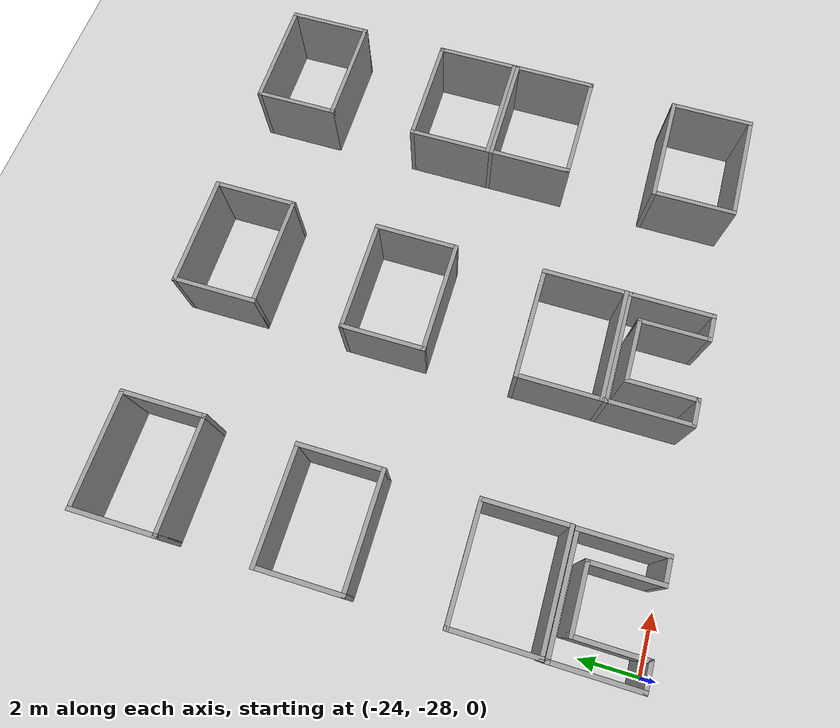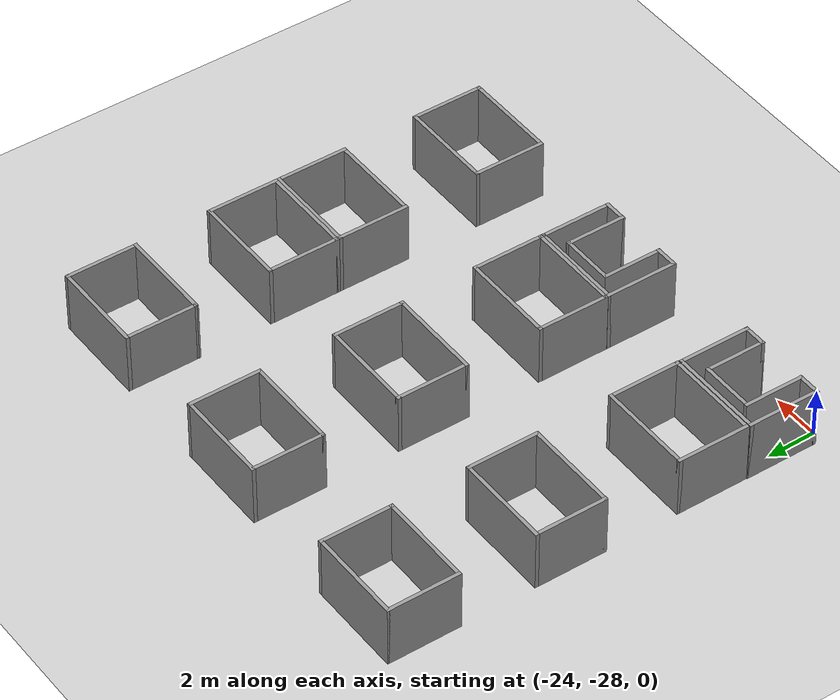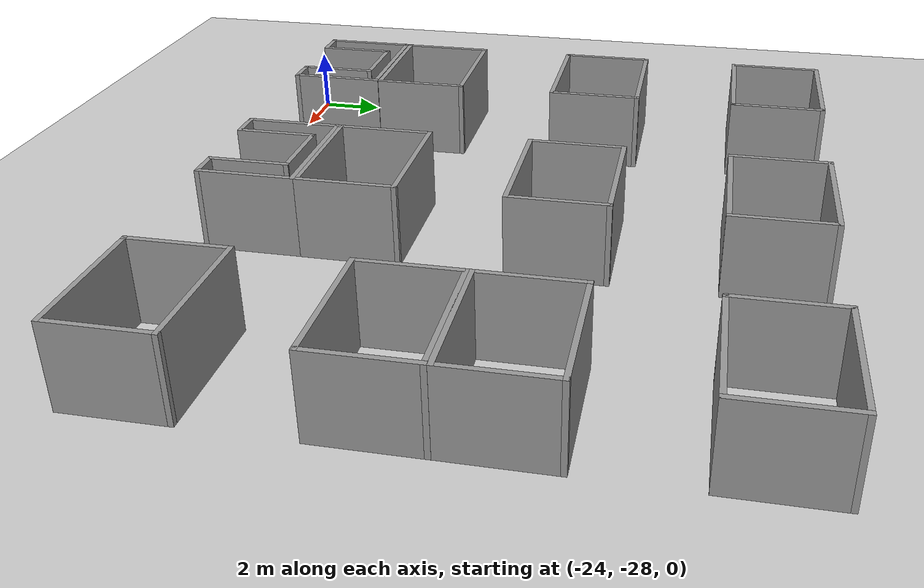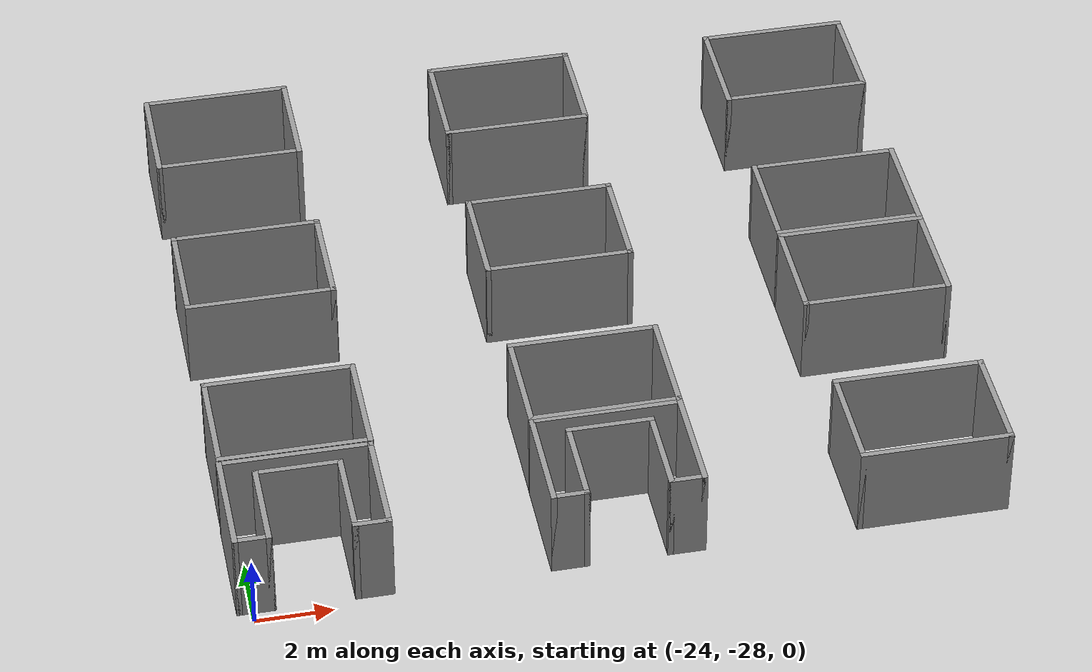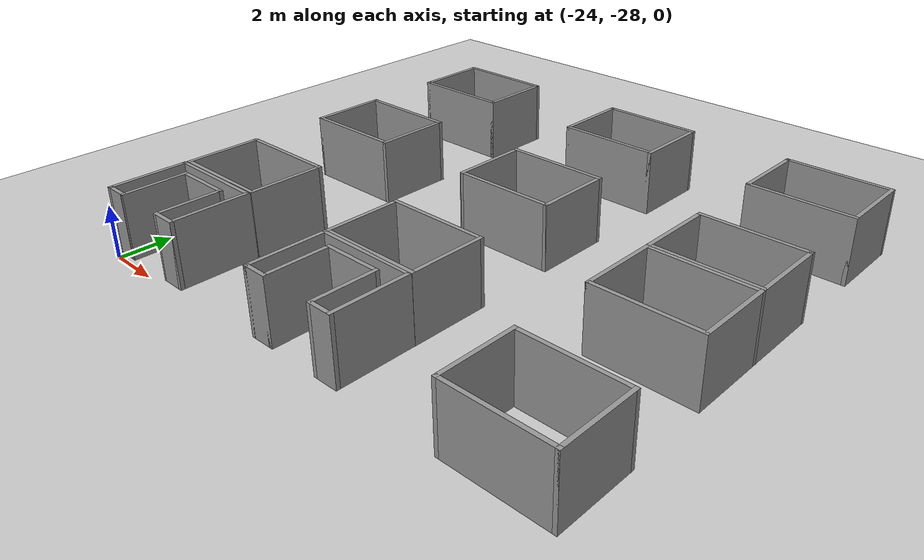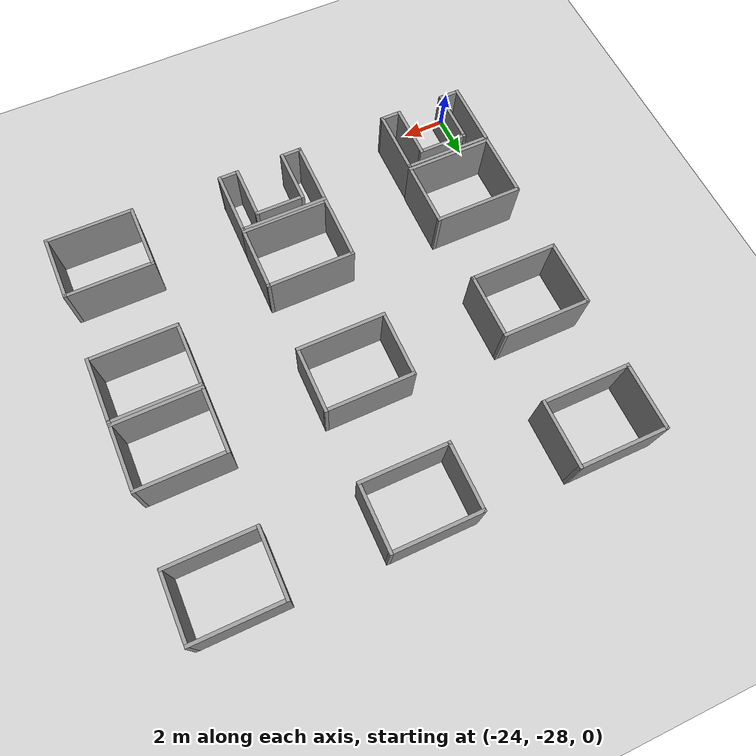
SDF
<sdf version="1.6">
 <world name="default">
  <model name="ground_plane">
   <static>1</static>
   <link name="link">
    <collision name="collision">
     <geometry><plane><normal>0 0 1</normal><size>105 105</size></plane></geometry>
     <surface>
      <contact><collide_bitmask>65535</collide_bitmask></contact>
      <friction><ode><mu>100</mu><mu2>50</mu2></ode></friction>
     </surface>
    </collision>
    <visual name="visual">
     <cast_shadows>0</cast_shadows>
     <geometry><plane><normal>0 0 1</normal><size>105 105</size></plane></geometry>
     <material>
      <script><uri>file://media/materials/scripts/gazebo.material</uri><name>Gazebo/Grey</name></script>
     </material>
    </visual>
   </link>
  </model>
  <model name="base3x4_53">
   <pose>-22.3998 -23.2187 0 0 -0 0</pose>
   <link name="Wall_18">
    <collision name="Wall_18_Collision">
     <geometry><box><size>3 0.15 2.5</size></box></geometry>
     <pose>0 0 1.25 0 -0 0</pose>
    </collision>
    <visual name="Wall_18_Visual">
     <pose>0 0 1.25 0 -0 0</pose>
     <geometry><box><size>3 0.15 2.5</size></box></geometry>
     <material>
      <script><uri>file://media/materials/scripts/gazebo.material</uri><name>Gazebo/Grey</name></script>
      <ambient>1 1 1 1</ambient>
     </material>
     <meta><layer>0</layer></meta>
    </visual>
    <pose>-1.925 -0 0 0 -0 -1.5708</pose>
   </link>
   <link name="Wall_19">
    <collision name="Wall_19_Collision">
     <geometry><box><size>4 0.15 2.5</size></box></geometry>
     <pose>0 0 1.25 0 -0 0</pose>
    </collision>
    <visual name="Wall_19_Visual">
     <pose>0 0 1.25 0 -0 0</pose>
     <geometry><box><size>4 0.15 2.5</size></box></geometry>
     <material>
      <script><uri>file://media/materials/scripts/gazebo.material</uri><name>Gazebo/Grey</name></script>
      <ambient>1 1 1 1</ambient>
     </material>
     <meta><layer>0</layer></meta>
    </visual>
    <pose>-0 -1.425 0 0 -0 0</pose>
   </link>
   <link name="Wall_20">
    <collision name="Wall_20_Collision">
     <geometry><box><size>3 0.15 2.5</size></box></geometry>
     <pose>0 0 1.25 0 -0 0</pose>
    </collision>
    <visual name="Wall_20_Visual">
     <pose>0 0 1.25 0 -0 0</pose>
     <geometry><box><size>3 0.15 2.5</size></box></geometry>
     <material>
      <script><uri>file://media/materials/scripts/gazebo.material</uri><name>Gazebo/Grey</name></script>
      <ambient>1 1 1 1</ambient>
     </material>
     <meta><layer>0</layer></meta>
    </visual>
    <pose>1.925 -0 0 0 -0 1.5708</pose>
   </link>
   <link name="Wall_21">
    <collision name="Wall_21_Collision">
     <geometry><box><size>4 0.15 2.5</size></box></geometry>
     <pose>0 0 1.25 0 -0 0</pose>
    </collision>
    <visual name="Wall_21_Visual">
     <pose>0 0 1.25 0 -0 0</pose>
     <geometry><box><size>4 0.15 2.5</size></box></geometry>
     <material>
      <script><uri>file://media/materials/scripts/gazebo.material</uri><name>Gazebo/Grey</name></script>
      <ambient>1 1 1 1</ambient>
     </material>
     <meta><layer>0</layer></meta>
    </visual>
    <pose>-0 1.425 0 0 -0 3.14159</pose>
   </link>
   <static>1</static>
  </model>
  <model name="base3x4_61">
   <pose>-22.4078 -17.2215 0 0 -0 0</pose>
   <link name="Wall_18">
    <collision name="Wall_18_Collision">
     <geometry><box><size>3 0.15 2.5</size></box></geometry>
     <pose>0 0 1.25 0 -0 0</pose>
    </collision>
    <visual name="Wall_18_Visual">
     <pose>0 0 1.25 0 -0 0</pose>
     <geometry><box><size>3 0.15 2.5</size></box></geometry>
     <material>
      <script><uri>file://media/materials/scripts/gazebo.material</uri><name>Gazebo/Grey</name></script>
      <ambient>1 1 1 1</ambient>
     </material>
     <meta><layer>0</layer></meta>
    </visual>
    <pose>-1.925 -0 0 0 -0 -1.5708</pose>
   </link>
   <link name="Wall_19">
    <collision name="Wall_19_Collision">
     <geometry><box><size>4 0.15 2.5</size></box></geometry>
     <pose>0 0 1.25 0 -0 0</pose>
    </collision>
    <visual name="Wall_19_Visual">
     <pose>0 0 1.25 0 -0 0</pose>
     <geometry><box><size>4 0.15 2.5</size></box></geometry>
     <material>
      <script><uri>file://media/materials/scripts/gazebo.material</uri><name>Gazebo/Grey</name></script>
      <ambient>1 1 1 1</ambient>
     </material>
     <meta><layer>0</layer></meta>
    </visual>
    <pose>-0 -1.425 0 0 -0 0</pose>
   </link>
   <link name="Wall_20">
    <collision name="Wall_20_Collision">
     <geometry><box><size>3 0.15 2.5</size></box></geometry>
     <pose>0 0 1.25 0 -0 0</pose>
    </collision>
    <visual name="Wall_20_Visual">
     <pose>0 0 1.25 0 -0 0</pose>
     <geometry><box><size>3 0.15 2.5</size></box></geometry>
     <material>
      <script><uri>file://media/materials/scripts/gazebo.material</uri><name>Gazebo/Grey</name></script>
      <ambient>1 1 1 1</ambient>
     </material>
     <meta><layer>0</layer></meta>
    </visual>
    <pose>1.925 -0 0 0 -0 1.5708</pose>
   </link>
   <link name="Wall_21">
    <collision name="Wall_21_Collision">
     <geometry><box><size>4 0.15 2.5</size></box></geometry>
     <pose>0 0 1.25 0 -0 0</pose>
    </collision>
    <visual name="Wall_21_Visual">
     <pose>0 0 1.25 0 -0 0</pose>
     <geometry><box><size>4 0.15 2.5</size></box></geometry>
     <material>
      <script><uri>file://media/materials/scripts/gazebo.material</uri><name>Gazebo/Grey</name></script>
      <ambient>1 1 1 1</ambient>
     </material>
     <meta><layer>0</layer></meta>
    </visual>
    <pose>-0 1.425 0 0 -0 3.14159</pose>
   </link>
   <static>1</static>
  </model>
  <model name="base3x4_67">
   <pose>-22.4088 -11.219 0 0 -0 0</pose>
   <link name="Wall_18">
    <collision name="Wall_18_Collision">
     <geometry><box><size>3 0.15 2.5</size></box></geometry>
     <pose>0 0 1.25 0 -0 0</pose>
    </collision>
    <visual name="Wall_18_Visual">
     <pose>0 0 1.25 0 -0 0</pose>
     <geometry><box><size>3 0.15 2.5</size></box></geometry>
     <material>
      <script><uri>file://media/materials/scripts/gazebo.material</uri><name>Gazebo/Grey</name></script>
      <ambient>1 1 1 1</ambient>
     </material>
     <meta><layer>0</layer></meta>
    </visual>
    <pose>-1.925 -0 0 0 -0 -1.5708</pose>
   </link>
   <link name="Wall_19">
    <collision name="Wall_19_Collision">
     <geometry><box><size>4 0.15 2.5</size></box></geometry>
     <pose>0 0 1.25 0 -0 0</pose>
    </collision>
    <visual name="Wall_19_Visual">
     <pose>0 0 1.25 0 -0 0</pose>
     <geometry><box><size>4 0.15 2.5</size></box></geometry>
     <material>
      <script><uri>file://media/materials/scripts/gazebo.material</uri><name>Gazebo/Grey</name></script>
      <ambient>1 1 1 1</ambient>
     </material>
     <meta><layer>0</layer></meta>
    </visual>
    <pose>-0 -1.425 0 0 -0 0</pose>
   </link>
   <link name="Wall_20">
    <collision name="Wall_20_Collision">
     <geometry><box><size>3 0.15 2.5</size></box></geometry>
     <pose>0 0 1.25 0 -0 0</pose>
    </collision>
    <visual name="Wall_20_Visual">
     <pose>0 0 1.25 0 -0 0</pose>
     <geometry><box><size>3 0.15 2.5</size></box></geometry>
     <material>
      <script><uri>file://media/materials/scripts/gazebo.material</uri><name>Gazebo/Grey</name></script>
      <ambient>1 1 1 1</ambient>
     </material>
     <meta><layer>0</layer></meta>
    </visual>
    <pose>1.925 -0 0 0 -0 1.5708</pose>
   </link>
   <link name="Wall_21">
    <collision name="Wall_21_Collision">
     <geometry><box><size>4 0.15 2.5</size></box></geometry>
     <pose>0 0 1.25 0 -0 0</pose>
    </collision>
    <visual name="Wall_21_Visual">
     <pose>0 0 1.25 0 -0 0</pose>
     <geometry><box><size>4 0.15 2.5</size></box></geometry>
     <material>
      <script><uri>file://media/materials/scripts/gazebo.material</uri><name>Gazebo/Grey</name></script>
      <ambient>1 1 1 1</ambient>
     </material>
     <meta><layer>0</layer></meta>
    </visual>
    <pose>-0 1.425 0 0 -0 3.14159</pose>
   </link>
   <static>1</static>
  </model>
  <model name="base3x4_64">
   <pose>-14.4197 -23.2316 0 0 -0 0</pose>
   <link name="Wall_18">
    <collision name="Wall_18_Collision">
     <geometry><box><size>3 0.15 2.5</size></box></geometry>
     <pose>0 0 1.25 0 -0 0</pose>
    </collision>
    <visual name="Wall_18_Visual">
     <pose>0 0 1.25 0 -0 0</pose>
     <geometry><box><size>3 0.15 2.5</size></box></geometry>
     <material>
      <script><uri>file://media/materials/scripts/gazebo.material</uri><name>Gazebo/Grey</name></script>
      <ambient>1 1 1 1</ambient>
     </material>
     <meta><layer>0</layer></meta>
    </visual>
    <pose>-1.925 -0 0 0 -0 -1.5708</pose>
   </link>
   <link name="Wall_19">
    <collision name="Wall_19_Collision">
     <geometry><box><size>4 0.15 2.5</size></box></geometry>
     <pose>0 0 1.25 0 -0 0</pose>
    </collision>
    <visual name="Wall_19_Visual">
     <pose>0 0 1.25 0 -0 0</pose>
     <geometry><box><size>4 0.15 2.5</size></box></geometry>
     <material>
      <script><uri>file://media/materials/scripts/gazebo.material</uri><name>Gazebo/Grey</name></script>
      <ambient>1 1 1 1</ambient>
     </material>
     <meta><layer>0</layer></meta>
    </visual>
    <pose>-0 -1.425 0 0 -0 0</pose>
   </link>
   <link name="Wall_20">
    <collision name="Wall_20_Collision">
     <geometry><box><size>3 0.15 2.5</size></box></geometry>
     <pose>0 0 1.25 0 -0 0</pose>
    </collision>
    <visual name="Wall_20_Visual">
     <pose>0 0 1.25 0 -0 0</pose>
     <geometry><box><size>3 0.15 2.5</size></box></geometry>
     <material>
      <script><uri>file://media/materials/scripts/gazebo.material</uri><name>Gazebo/Grey</name></script>
      <ambient>1 1 1 1</ambient>
     </material>
     <meta><layer>0</layer></meta>
    </visual>
    <pose>1.925 -0 0 0 -0 1.5708</pose>
   </link>
   <link name="Wall_21">
    <collision name="Wall_21_Collision">
     <geometry><box><size>4 0.15 2.5</size></box></geometry>
     <pose>0 0 1.25 0 -0 0</pose>
    </collision>
    <visual name="Wall_21_Visual">
     <pose>0 0 1.25 0 -0 0</pose>
     <geometry><box><size>4 0.15 2.5</size></box></geometry>
     <material>
      <script><uri>file://media/materials/scripts/gazebo.material</uri><name>Gazebo/Grey</name></script>
      <ambient>1 1 1 1</ambient>
     </material>
     <meta><layer>0</layer></meta>
    </visual>
    <pose>-0 1.425 0 0 -0 3.14159</pose>
   </link>
   <static>1</static>
  </model>
  <model name="base3x4_72">
   <pose>-14.4176 -17.2389 0 0 -0 0</pose>
   <link name="Wall_18">
    <collision name="Wall_18_Collision">
     <geometry><box><size>3 0.15 2.5</size></box></geometry>
     <pose>0 0 1.25 0 -0 0</pose>
    </collision>
    <visual name="Wall_18_Visual">
     <pose>0 0 1.25 0 -0 0</pose>
     <geometry><box><size>3 0.15 2.5</size></box></geometry>
     <material>
      <script><uri>file://media/materials/scripts/gazebo.material</uri><name>Gazebo/Grey</name></script>
      <ambient>1 1 1 1</ambient>
     </material>
     <meta><layer>0</layer></meta>
    </visual>
    <pose>-1.925 -0 0 0 -0 -1.5708</pose>
   </link>
   <link name="Wall_19">
    <collision name="Wall_19_Collision">
     <geometry><box><size>4 0.15 2.5</size></box></geometry>
     <pose>0 0 1.25 0 -0 0</pose>
    </collision>
    <visual name="Wall_19_Visual">
     <pose>0 0 1.25 0 -0 0</pose>
     <geometry><box><size>4 0.15 2.5</size></box></geometry>
     <material>
      <script><uri>file://media/materials/scripts/gazebo.material</uri><name>Gazebo/Grey</name></script>
      <ambient>1 1 1 1</ambient>
     </material>
     <meta><layer>0</layer></meta>
    </visual>
    <pose>-0 -1.425 0 0 -0 0</pose>
   </link>
   <link name="Wall_20">
    <collision name="Wall_20_Collision">
     <geometry><box><size>3 0.15 2.5</size></box></geometry>
     <pose>0 0 1.25 0 -0 0</pose>
    </collision>
    <visual name="Wall_20_Visual">
     <pose>0 0 1.25 0 -0 0</pose>
     <geometry><box><size>3 0.15 2.5</size></box></geometry>
     <material>
      <script><uri>file://media/materials/scripts/gazebo.material</uri><name>Gazebo/Grey</name></script>
      <ambient>1 1 1 1</ambient>
     </material>
     <meta><layer>0</layer></meta>
    </visual>
    <pose>1.925 -0 0 0 -0 1.5708</pose>
   </link>
   <link name="Wall_21">
    <collision name="Wall_21_Collision">
     <geometry><box><size>4 0.15 2.5</size></box></geometry>
     <pose>0 0 1.25 0 -0 0</pose>
    </collision>
    <visual name="Wall_21_Visual">
     <pose>0 0 1.25 0 -0 0</pose>
     <geometry><box><size>4 0.15 2.5</size></box></geometry>
     <material>
      <script><uri>file://media/materials/scripts/gazebo.material</uri><name>Gazebo/Grey</name></script>
      <ambient>1 1 1 1</ambient>
     </material>
     <meta><layer>0</layer></meta>
    </visual>
    <pose>-0 1.425 0 0 -0 3.14159</pose>
   </link>
   <static>1</static>
  </model>
  <model name="base3x4_75">
   <pose>-14.4135 -11.2542 0 0 -0 0</pose>
   <link name="Wall_18">
    <collision name="Wall_18_Collision">
     <geometry><box><size>3 0.15 2.5</size></box></geometry>
     <pose>0 0 1.25 0 -0 0</pose>
    </collision>
    <visual name="Wall_18_Visual">
     <pose>0 0 1.25 0 -0 0</pose>
     <geometry><box><size>3 0.15 2.5</size></box></geometry>
     <material>
      <script><uri>file://media/materials/scripts/gazebo.material</uri><name>Gazebo/Grey</name></script>
      <ambient>1 1 1 1</ambient>
     </material>
     <meta><layer>0</layer></meta>
    </visual>
    <pose>-1.925 -0 0 0 -0 -1.5708</pose>
   </link>
   <link name="Wall_19">
    <collision name="Wall_19_Collision">
     <geometry><box><size>4 0.15 2.5</size></box></geometry>
     <pose>0 0 1.25 0 -0 0</pose>
    </collision>
    <visual name="Wall_19_Visual">
     <pose>0 0 1.25 0 -0 0</pose>
     <geometry><box><size>4 0.15 2.5</size></box></geometry>
     <material>
      <script><uri>file://media/materials/scripts/gazebo.material</uri><name>Gazebo/Grey</name></script>
      <ambient>1 1 1 1</ambient>
     </material>
     <meta><layer>0</layer></meta>
    </visual>
    <pose>-0 -1.425 0 0 -0 0</pose>
   </link>
   <link name="Wall_20">
    <collision name="Wall_20_Collision">
     <geometry><box><size>3 0.15 2.5</size></box></geometry>
     <pose>0 0 1.25 0 -0 0</pose>
    </collision>
    <visual name="Wall_20_Visual">
     <pose>0 0 1.25 0 -0 0</pose>
     <geometry><box><size>3 0.15 2.5</size></box></geometry>
     <material>
      <script><uri>file://media/materials/scripts/gazebo.material</uri><name>Gazebo/Grey</name></script>
      <ambient>1 1 1 1</ambient>
     </material>
     <meta><layer>0</layer></meta>
    </visual>
    <pose>1.925 -0 0 0 -0 1.5708</pose>
   </link>
   <link name="Wall_21">
    <collision name="Wall_21_Collision">
     <geometry><box><size>4 0.15 2.5</size></box></geometry>
     <pose>0 0 1.25 0 -0 0</pose>
    </collision>
    <visual name="Wall_21_Visual">
     <pose>0 0 1.25 0 -0 0</pose>
     <geometry><box><size>4 0.15 2.5</size></box></geometry>
     <material>
      <script><uri>file://media/materials/scripts/gazebo.material</uri><name>Gazebo/Grey</name></script>
      <ambient>1 1 1 1</ambient>
     </material>
     <meta><layer>0</layer></meta>
    </visual>
    <pose>-0 1.425 0 0 -0 3.14159</pose>
   </link>
   <static>1</static>
  </model>
  <model name="base3x4_47">
   <pose>-6.49308 -20.2372 0 0 -0 0</pose>
   <link name="Wall_18">
    <collision name="Wall_18_Collision">
     <geometry><box><size>3 0.15 2.5</size></box></geometry>
     <pose>0 0 1.25 0 -0 0</pose>
    </collision>
    <visual name="Wall_18_Visual">
     <pose>0 0 1.25 0 -0 0</pose>
     <geometry><box><size>3 0.15 2.5</size></box></geometry>
     <material>
      <script><uri>file://media/materials/scripts/gazebo.material</uri><name>Gazebo/Grey</name></script>
      <ambient>1 1 1 1</ambient>
     </material>
     <meta><layer>0</layer></meta>
    </visual>
    <pose>-1.925 -0 0 0 -0 -1.5708</pose>
   </link>
   <link name="Wall_19">
    <collision name="Wall_19_Collision">
     <geometry><box><size>4 0.15 2.5</size></box></geometry>
     <pose>0 0 1.25 0 -0 0</pose>
    </collision>
    <visual name="Wall_19_Visual">
     <pose>0 0 1.25 0 -0 0</pose>
     <geometry><box><size>4 0.15 2.5</size></box></geometry>
     <material>
      <script><uri>file://media/materials/scripts/gazebo.material</uri><name>Gazebo/Grey</name></script>
      <ambient>1 1 1 1</ambient>
     </material>
     <meta><layer>0</layer></meta>
    </visual>
    <pose>-0 -1.425 0 0 -0 0</pose>
   </link>
   <link name="Wall_20">
    <collision name="Wall_20_Collision">
     <geometry><box><size>3 0.15 2.5</size></box></geometry>
     <pose>0 0 1.25 0 -0 0</pose>
    </collision>
    <visual name="Wall_20_Visual">
     <pose>0 0 1.25 0 -0 0</pose>
     <geometry><box><size>3 0.15 2.5</size></box></geometry>
     <material>
      <script><uri>file://media/materials/scripts/gazebo.material</uri><name>Gazebo/Grey</name></script>
      <ambient>1 1 1 1</ambient>
     </material>
     <meta><layer>0</layer></meta>
    </visual>
    <pose>1.925 -0 0 0 -0 1.5708</pose>
   </link>
   <link name="Wall_21">
    <collision name="Wall_21_Collision">
     <geometry><box><size>4 0.15 2.5</size></box></geometry>
     <pose>0 0 1.25 0 -0 0</pose>
    </collision>
    <visual name="Wall_21_Visual">
     <pose>0 0 1.25 0 -0 0</pose>
     <geometry><box><size>4 0.15 2.5</size></box></geometry>
     <material>
      <script><uri>file://media/materials/scripts/gazebo.material</uri><name>Gazebo/Grey</name></script>
      <ambient>1 1 1 1</ambient>
     </material>
     <meta><layer>0</layer></meta>
    </visual>
    <pose>-0 1.425 0 0 -0 3.14159</pose>
   </link>
   <static>1</static>
  </model>
  <model name="base3x4_52">
   <pose>-6.49511 -17.2522 0 0 -0 0</pose>
   <link name="Wall_18">
    <collision name="Wall_18_Collision">
     <geometry><box><size>3 0.15 2.5</size></box></geometry>
     <pose>0 0 1.25 0 -0 0</pose>
    </collision>
    <visual name="Wall_18_Visual">
     <pose>0 0 1.25 0 -0 0</pose>
     <geometry><box><size>3 0.15 2.5</size></box></geometry>
     <material>
      <script><uri>file://media/materials/scripts/gazebo.material</uri><name>Gazebo/Grey</name></script>
      <ambient>1 1 1 1</ambient>
     </material>
     <meta><layer>0</layer></meta>
    </visual>
    <pose>-1.925 -0 0 0 -0 -1.5708</pose>
   </link>
   <link name="Wall_19">
    <collision name="Wall_19_Collision">
     <geometry><box><size>4 0.15 2.5</size></box></geometry>
     <pose>0 0 1.25 0 -0 0</pose>
    </collision>
    <visual name="Wall_19_Visual">
     <pose>0 0 1.25 0 -0 0</pose>
     <geometry><box><size>4 0.15 2.5</size></box></geometry>
     <material>
      <script><uri>file://media/materials/scripts/gazebo.material</uri><name>Gazebo/Grey</name></script>
      <ambient>1 1 1 1</ambient>
     </material>
     <meta><layer>0</layer></meta>
    </visual>
    <pose>-0 -1.425 0 0 -0 0</pose>
   </link>
   <link name="Wall_20">
    <collision name="Wall_20_Collision">
     <geometry><box><size>3 0.15 2.5</size></box></geometry>
     <pose>0 0 1.25 0 -0 0</pose>
    </collision>
    <visual name="Wall_20_Visual">
     <pose>0 0 1.25 0 -0 0</pose>
     <geometry><box><size>3 0.15 2.5</size></box></geometry>
     <material>
      <script><uri>file://media/materials/scripts/gazebo.material</uri><name>Gazebo/Grey</name></script>
      <ambient>1 1 1 1</ambient>
     </material>
     <meta><layer>0</layer></meta>
    </visual>
    <pose>1.925 -0 0 0 -0 1.5708</pose>
   </link>
   <link name="Wall_21">
    <collision name="Wall_21_Collision">
     <geometry><box><size>4 0.15 2.5</size></box></geometry>
     <pose>0 0 1.25 0 -0 0</pose>
    </collision>
    <visual name="Wall_21_Visual">
     <pose>0 0 1.25 0 -0 0</pose>
     <geometry><box><size>4 0.15 2.5</size></box></geometry>
     <material>
      <script><uri>file://media/materials/scripts/gazebo.material</uri><name>Gazebo/Grey</name></script>
      <ambient>1 1 1 1</ambient>
     </material>
     <meta><layer>0</layer></meta>
    </visual>
    <pose>-0 1.425 0 0 -0 3.14159</pose>
   </link>
   <static>1</static>
  </model>
  <model name="base3x4_83">
   <pose>-6.49855 -11.2829 0 0 -0 0</pose>
   <link name="Wall_18">
    <collision name="Wall_18_Collision">
     <geometry><box><size>3 0.15 2.5</size></box></geometry>
     <pose>0 0 1.25 0 -0 0</pose>
    </collision>
    <visual name="Wall_18_Visual">
     <pose>0 0 1.25 0 -0 0</pose>
     <geometry><box><size>3 0.15 2.5</size></box></geometry>
     <material>
      <script><uri>file://media/materials/scripts/gazebo.material</uri><name>Gazebo/Grey</name></script>
      <ambient>1 1 1 1</ambient>
     </material>
     <meta><layer>0</layer></meta>
    </visual>
    <pose>-1.925 -0 0 0 -0 -1.5708</pose>
   </link>
   <link name="Wall_19">
    <collision name="Wall_19_Collision">
     <geometry><box><size>4 0.15 2.5</size></box></geometry>
     <pose>0 0 1.25 0 -0 0</pose>
    </collision>
    <visual name="Wall_19_Visual">
     <pose>0 0 1.25 0 -0 0</pose>
     <geometry><box><size>4 0.15 2.5</size></box></geometry>
     <material>
      <script><uri>file://media/materials/scripts/gazebo.material</uri><name>Gazebo/Grey</name></script>
      <ambient>1 1 1 1</ambient>
     </material>
     <meta><layer>0</layer></meta>
    </visual>
    <pose>-0 -1.425 0 0 -0 0</pose>
   </link>
   <link name="Wall_20">
    <collision name="Wall_20_Collision">
     <geometry><box><size>3 0.15 2.5</size></box></geometry>
     <pose>0 0 1.25 0 -0 0</pose>
    </collision>
    <visual name="Wall_20_Visual">
     <pose>0 0 1.25 0 -0 0</pose>
     <geometry><box><size>3 0.15 2.5</size></box></geometry>
     <material>
      <script><uri>file://media/materials/scripts/gazebo.material</uri><name>Gazebo/Grey</name></script>
      <ambient>1 1 1 1</ambient>
     </material>
     <meta><layer>0</layer></meta>
    </visual>
    <pose>1.925 -0 0 0 -0 1.5708</pose>
   </link>
   <link name="Wall_21">
    <collision name="Wall_21_Collision">
     <geometry><box><size>4 0.15 2.5</size></box></geometry>
     <pose>0 0 1.25 0 -0 0</pose>
    </collision>
    <visual name="Wall_21_Visual">
     <pose>0 0 1.25 0 -0 0</pose>
     <geometry><box><size>4 0.15 2.5</size></box></geometry>
     <material>
      <script><uri>file://media/materials/scripts/gazebo.material</uri><name>Gazebo/Grey</name></script>
      <ambient>1 1 1 1</ambient>
     </material>
     <meta><layer>0</layer></meta>
    </visual>
    <pose>-0 1.425 0 0 -0 3.14159</pose>
   </link>
   <static>1</static>
  </model>
  <model name="base3x4_41">
   <pose>-6.49253 -26.2298 0 0 -0 0</pose>
   <link name="Wall_18">
    <collision name="Wall_18_Collision">
     <geometry><box><size>3 0.15 2.5</size></box></geometry>
     <pose>0 0 1.25 0 -0 0</pose>
    </collision>
    <visual name="Wall_18_Visual">
     <pose>0 0 1.25 0 -0 0</pose>
     <geometry><box><size>3 0.15 2.5</size></box></geometry>
     <material>
      <script><uri>file://media/materials/scripts/gazebo.material</uri><name>Gazebo/Grey</name></script>
      <ambient>1 1 1 1</ambient>
     </material>
     <meta><layer>0</layer></meta>
    </visual>
    <pose>-1.925 -0 0 0 -0 -1.5708</pose>
   </link>
   <link name="Wall_19">
    <collision name="Wall_19_Collision">
     <geometry><box><size>4 0.15 2.5</size></box></geometry>
     <pose>0 0 1.25 0 -0 0</pose>
    </collision>
    <visual name="Wall_19_Visual">
     <pose>0 0 1.25 0 -0 0</pose>
     <geometry><box><size>4 0.15 2.5</size></box></geometry>
     <material>
      <script><uri>file://media/materials/scripts/gazebo.material</uri><name>Gazebo/Grey</name></script>
      <ambient>1 1 1 1</ambient>
     </material>
     <meta><layer>0</layer></meta>
    </visual>
    <pose>-0 -1.425 0 0 -0 0</pose>
   </link>
   <link name="Wall_20">
    <collision name="Wall_20_Collision">
     <geometry><box><size>3 0.15 2.5</size></box></geometry>
     <pose>0 0 1.25 0 -0 0</pose>
    </collision>
    <visual name="Wall_20_Visual">
     <pose>0 0 1.25 0 -0 0</pose>
     <geometry><box><size>3 0.15 2.5</size></box></geometry>
     <material>
      <script><uri>file://media/materials/scripts/gazebo.material</uri><name>Gazebo/Grey</name></script>
      <ambient>1 1 1 1</ambient>
     </material>
     <meta><layer>0</layer></meta>
    </visual>
    <pose>1.925 -0 0 0 -0 1.5708</pose>
   </link>
   <link name="Wall_21">
    <collision name="Wall_21_Collision">
     <geometry><box><size>4 0.15 2.5</size></box></geometry>
     <pose>0 0 1.25 0 -0 0</pose>
    </collision>
    <visual name="Wall_21_Visual">
     <pose>0 0 1.25 0 -0 0</pose>
     <geometry><box><size>4 0.15 2.5</size></box></geometry>
     <material>
      <script><uri>file://media/materials/scripts/gazebo.material</uri><name>Gazebo/Grey</name></script>
      <ambient>1 1 1 1</ambient>
     </material>
     <meta><layer>0</layer></meta>
    </visual>
    <pose>-0 1.425 0 0 -0 3.14159</pose>
   </link>
   <static>1</static>
  </model>
  <model name="box_u_v4X3X2.5">
   <pose>-14.4253 -26.2059 0 0 -0 0</pose>
   <link name="Wall_30">
    <collision name="Wall_30_Collision">
     <geometry><box><size>3 0.15 2.5</size></box></geometry>
     <pose>0 0 1.25 0 -0 0</pose>
    </collision>
    <visual name="Wall_30_Visual">
     <pose>0 0 1.25 0 -0 0</pose>
     <geometry><box><size>3 0.15 2.5</size></box></geometry>
     <material>
      <script><uri>file://media/materials/scripts/gazebo.material</uri><name>Gazebo/Grey</name></script>
      <ambient>1 1 1 1</ambient>
     </material>
     <meta><layer>0</layer></meta>
    </visual>
    <pose>-1.925 0 0 0 -0 -1.5708</pose>
   </link>
   <link name="Wall_32">
    <collision name="Wall_32_Collision">
     <geometry><box><size>4 0.15 2.5</size></box></geometry>
     <pose>0 0 1.25 0 -0 0</pose>
    </collision>
    <visual name="Wall_32_Visual">
     <pose>0 0 1.25 0 -0 0</pose>
     <geometry><box><size>4 0.15 2.5</size></box></geometry>
     <material>
      <script><uri>file://media/materials/scripts/gazebo.material</uri><name>Gazebo/Grey</name></script>
      <ambient>1 1 1 1</ambient>
     </material>
     <meta><layer>0</layer></meta>
    </visual>
    <pose>0 1.425 0 0 -0 0</pose>
   </link>
   <link name="Wall_33">
    <collision name="Wall_33_Collision">
     <geometry><box><size>3 0.15 2.5</size></box></geometry>
     <pose>0 0 1.25 0 -0 0</pose>
    </collision>
    <visual name="Wall_33_Visual">
     <pose>0 0 1.25 0 -0 0</pose>
     <geometry><box><size>3 0.15 2.5</size></box></geometry>
     <material>
      <script><uri>file://media/materials/scripts/gazebo.material</uri><name>Gazebo/Grey</name></script>
      <ambient>1 1 1 1</ambient>
     </material>
     <meta><layer>0</layer></meta>
    </visual>
    <pose>1.925 0 0 0 -0 -1.5708</pose>
   </link>
   <link name="Wall_34">
    <collision name="Wall_34_Collision">
     <geometry><box><size>1 0.15 2.5</size></box></geometry>
     <pose>0 0 1.25 0 -0 0</pose>
    </collision>
    <visual name="Wall_34_Visual">
     <pose>0 0 1.25 0 -0 0</pose>
     <geometry><box><size>1 0.15 2.5</size></box></geometry>
     <material>
      <script><uri>file://media/materials/scripts/gazebo.material</uri><name>Gazebo/Grey</name></script>
      <ambient>1 1 1 1</ambient>
     </material>
     <meta><layer>0</layer></meta>
    </visual>
    <pose>1.5 -1.425 0 0 -0 3.14159</pose>
   </link>
   <link name="Wall_35">
    <collision name="Wall_35_Collision">
     <geometry><box><size>2.5 0.15 2.5</size></box></geometry>
     <pose>0 0 1.25 0 -0 0</pose>
    </collision>
    <visual name="Wall_35_Visual">
     <pose>0 0 1.25 0 -0 0</pose>
     <geometry><box><size>2.5 0.15 2.5</size></box></geometry>
     <material>
      <script><uri>file://media/materials/scripts/gazebo.material</uri><name>Gazebo/Grey</name></script>
      <ambient>1 1 1 1</ambient>
     </material>
     <meta><layer>0</layer></meta>
    </visual>
    <pose>1.075 -0.25 0 0 -0 1.5708</pose>
   </link>
   <link name="Wall_37">
    <collision name="Wall_37_Collision">
     <geometry><box><size>1 0.15 2.5</size></box></geometry>
     <pose>0 0 1.25 0 -0 0</pose>
    </collision>
    <visual name="Wall_37_Visual">
     <pose>0 0 1.25 0 -0 0</pose>
     <geometry><box><size>1 0.15 2.5</size></box></geometry>
     <material>
      <script><uri>file://media/materials/scripts/gazebo.material</uri><name>Gazebo/Grey</name></script>
      <ambient>1 1 1 1</ambient>
     </material>
     <meta><layer>0</layer></meta>
    </visual>
    <pose>-1.5 -1.425 0 0 -0 0</pose>
   </link>
   <link name="Wall_38">
    <collision name="Wall_38_Collision">
     <geometry><box><size>2.5 0.15 2.5</size></box></geometry>
     <pose>0 0 1.25 0 -0 0</pose>
    </collision>
    <visual name="Wall_38_Visual">
     <pose>0 0 1.25 0 -0 0</pose>
     <geometry><box><size>2.5 0.15 2.5</size></box></geometry>
     <material>
      <script><uri>file://media/materials/scripts/gazebo.material</uri><name>Gazebo/Grey</name></script>
      <ambient>1 1 1 1</ambient>
     </material>
     <meta><layer>0</layer></meta>
    </visual>
    <pose>-1.075 -0.25 0 0 -0 1.5708</pose>
   </link>
   <link name="Wall_39">
    <collision name="Wall_39_Collision">
     <geometry><box><size>2.3 0.15 2.5</size></box></geometry>
     <pose>0 0 1.25 0 -0 0</pose>
    </collision>
    <visual name="Wall_39_Visual">
     <pose>0 0 1.25 0 -0 0</pose>
     <geometry><box><size>2.3 0.15 2.5</size></box></geometry>
     <material>
      <script><uri>file://media/materials/scripts/gazebo.material</uri><name>Gazebo/Grey</name></script>
      <ambient>1 1 1 1</ambient>
     </material>
     <meta><layer>0</layer></meta>
    </visual>
    <pose>0 0.925 0 0 -0 0</pose>
   </link>
   <static>1</static>
  </model>
  <model name="box_u_v4X3X2.5_0">
   <pose>-22.4236 -26.2361 0 0 -0 0</pose>
   <link name="Wall_30">
    <collision name="Wall_30_Collision">
     <geometry><box><size>3 0.15 2.5</size></box></geometry>
     <pose>0 0 1.25 0 -0 0</pose>
    </collision>
    <visual name="Wall_30_Visual">
     <pose>0 0 1.25 0 -0 0</pose>
     <geometry><box><size>3 0.15 2.5</size></box></geometry>
     <material>
      <script><uri>file://media/materials/scripts/gazebo.material</uri><name>Gazebo/Grey</name></script>
      <ambient>1 1 1 1</ambient>
     </material>
     <meta><layer>0</layer></meta>
    </visual>
    <pose>-1.925 0 0 0 -0 -1.5708</pose>
   </link>
   <link name="Wall_32">
    <collision name="Wall_32_Collision">
     <geometry><box><size>4 0.15 2.5</size></box></geometry>
     <pose>0 0 1.25 0 -0 0</pose>
    </collision>
    <visual name="Wall_32_Visual">
     <pose>0 0 1.25 0 -0 0</pose>
     <geometry><box><size>4 0.15 2.5</size></box></geometry>
     <material>
      <script><uri>file://media/materials/scripts/gazebo.material</uri><name>Gazebo/Grey</name></script>
      <ambient>1 1 1 1</ambient>
     </material>
     <meta><layer>0</layer></meta>
    </visual>
    <pose>0 1.425 0 0 -0 0</pose>
   </link>
   <link name="Wall_33">
    <collision name="Wall_33_Collision">
     <geometry><box><size>3 0.15 2.5</size></box></geometry>
     <pose>0 0 1.25 0 -0 0</pose>
    </collision>
    <visual name="Wall_33_Visual">
     <pose>0 0 1.25 0 -0 0</pose>
     <geometry><box><size>3 0.15 2.5</size></box></geometry>
     <material>
      <script><uri>file://media/materials/scripts/gazebo.material</uri><name>Gazebo/Grey</name></script>
      <ambient>1 1 1 1</ambient>
     </material>
     <meta><layer>0</layer></meta>
    </visual>
    <pose>1.925 0 0 0 -0 -1.5708</pose>
   </link>
   <link name="Wall_34">
    <collision name="Wall_34_Collision">
     <geometry><box><size>1 0.15 2.5</size></box></geometry>
     <pose>0 0 1.25 0 -0 0</pose>
    </collision>
    <visual name="Wall_34_Visual">
     <pose>0 0 1.25 0 -0 0</pose>
     <geometry><box><size>1 0.15 2.5</size></box></geometry>
     <material>
      <script><uri>file://media/materials/scripts/gazebo.material</uri><name>Gazebo/Grey</name></script>
      <ambient>1 1 1 1</ambient>
     </material>
     <meta><layer>0</layer></meta>
    </visual>
    <pose>1.5 -1.425 0 0 -0 3.14159</pose>
   </link>
   <link name="Wall_35">
    <collision name="Wall_35_Collision">
     <geometry><box><size>2.5 0.15 2.5</size></box></geometry>
     <pose>0 0 1.25 0 -0 0</pose>
    </collision>
    <visual name="Wall_35_Visual">
     <pose>0 0 1.25 0 -0 0</pose>
     <geometry><box><size>2.5 0.15 2.5</size></box></geometry>
     <material>
      <script><uri>file://media/materials/scripts/gazebo.material</uri><name>Gazebo/Grey</name></script>
      <ambient>1 1 1 1</ambient>
     </material>
     <meta><layer>0</layer></meta>
    </visual>
    <pose>1.075 -0.25 0 0 -0 1.5708</pose>
   </link>
   <link name="Wall_37">
    <collision name="Wall_37_Collision">
     <geometry><box><size>1 0.15 2.5</size></box></geometry>
     <pose>0 0 1.25 0 -0 0</pose>
    </collision>
    <visual name="Wall_37_Visual">
     <pose>0 0 1.25 0 -0 0</pose>
     <geometry><box><size>1 0.15 2.5</size></box></geometry>
     <material>
      <script><uri>file://media/materials/scripts/gazebo.material</uri><name>Gazebo/Grey</name></script>
      <ambient>1 1 1 1</ambient>
     </material>
     <meta><layer>0</layer></meta>
    </visual>
    <pose>-1.5 -1.425 0 0 -0 0</pose>
   </link>
   <link name="Wall_38">
    <collision name="Wall_38_Collision">
     <geometry><box><size>2.5 0.15 2.5</size></box></geometry>
     <pose>0 0 1.25 0 -0 0</pose>
    </collision>
    <visual name="Wall_38_Visual">
     <pose>0 0 1.25 0 -0 0</pose>
     <geometry><box><size>2.5 0.15 2.5</size></box></geometry>
     <material>
      <script><uri>file://media/materials/scripts/gazebo.material</uri><name>Gazebo/Grey</name></script>
      <ambient>1 1 1 1</ambient>
     </material>
     <meta><layer>0</layer></meta>
    </visual>
    <pose>-1.075 -0.25 0 0 -0 1.5708</pose>
   </link>
   <link name="Wall_39">
    <collision name="Wall_39_Collision">
     <geometry><box><size>2.3 0.15 2.5</size></box></geometry>
     <pose>0 0 1.25 0 -0 0</pose>
    </collision>
    <visual name="Wall_39_Visual">
     <pose>0 0 1.25 0 -0 0</pose>
     <geometry><box><size>2.3 0.15 2.5</size></box></geometry>
     <material>
      <script><uri>file://media/materials/scripts/gazebo.material</uri><name>Gazebo/Grey</name></script>
      <ambient>1 1 1 1</ambient>
     </material>
     <meta><layer>0</layer></meta>
    </visual>
    <pose>0 0.925 0 0 -0 0</pose>
   </link>
   <static>1</static>
  </model>
 </world>
</sdf>
